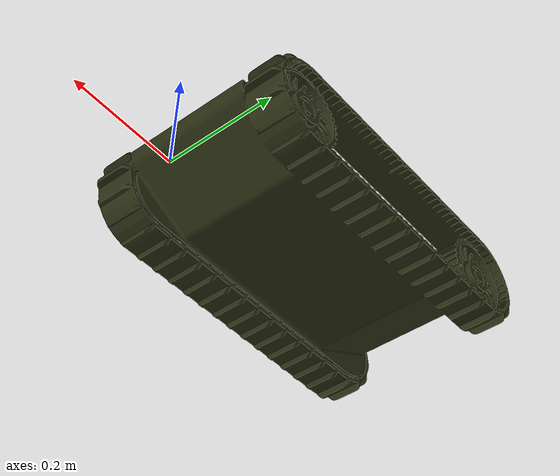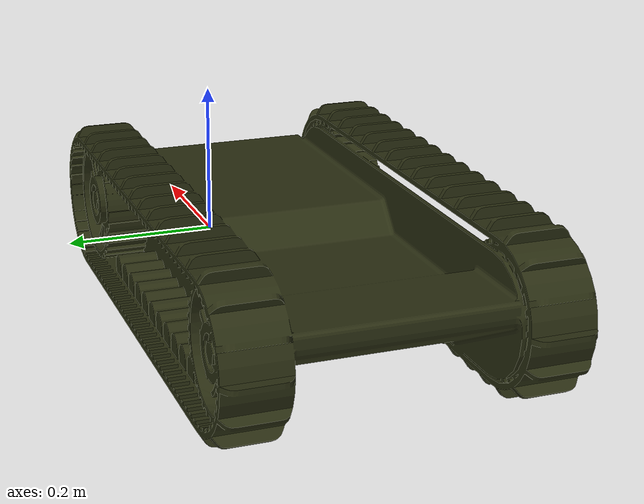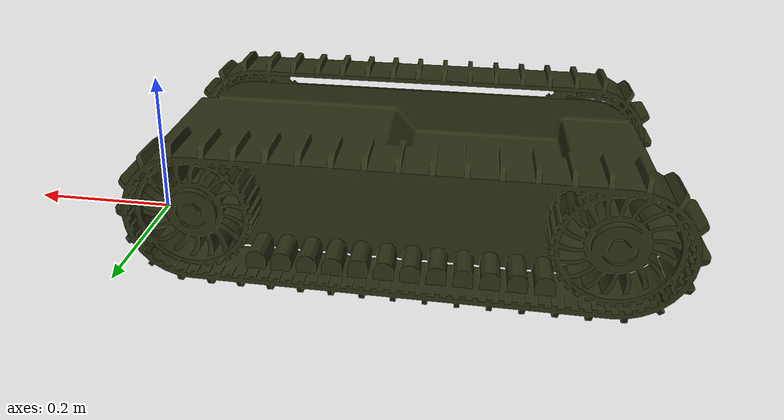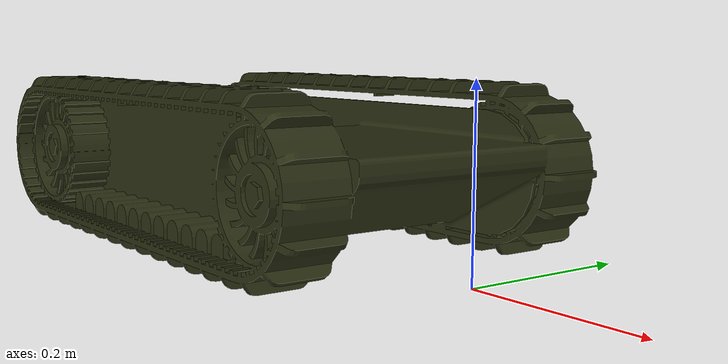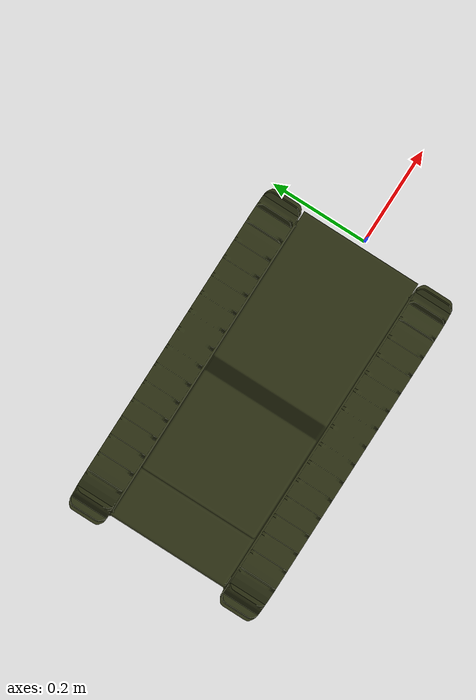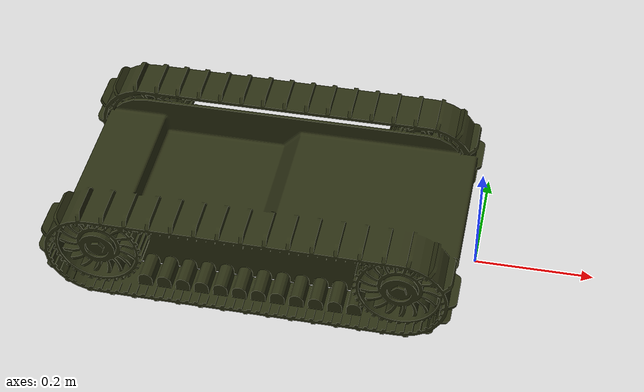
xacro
<?xml version="1.0"?>

<robot name="gvrbot" xmlns:xacro="http://www.ros.org/wiki/xacro">

    <!-- Included URDF Files -->
    <xacro:include filename="$(find gvrbot)/models/robots/gvrbot_base.urdf.xacro" />
    <xacro:gvr_base_macro />
</robot>

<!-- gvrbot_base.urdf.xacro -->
<robot name="gvr_base"
    xmlns:xacro="http://www.ros.org/wiki/xacro"
    xmlns:interface="http://www.ros.org/wiki/xacro/#interface">

    <xacro:include filename="$(find gvrbot)/models/robots/inertial_tensors.urdf.xacro" />
    <xacro:include filename="$(find gvrbot)/models/robots/single_wheel.urdf.xacro" />

    <!-- Properties (Constants) -->
    <xacro:property name="PI" value="3.1415926535897931" />

    <xacro:property name="base_size_x" value="0.680" />
    <xacro:property name="base_size_y" value="0.42" />
    <xacro:property name="base_size_z" value="0.178" />
    <xacro:property name="base_mass" value="10.89" />

    <xacro:property name="wheel_radius_big" value="0.085" />
    <xacro:property name="wheel_size_y" value="0.0825" />
    <xacro:property name="wheel_mass" value="0.1" />

    <xacro:property name="wheel_offset_z_from_base_link" value="-${wheel_radius_big}" />

    <material name="army_green"><color rgba="${42/255} ${46/255} ${18/255} 1.0"/></material>

    <xacro:macro name="gvr_base_macro">

        <link name="base_link"></link>
        <joint name="base_link_joint" type="fixed">
            <origin xyz="0 0 0" rpy="0 0 0" />
            <parent link="base_link"/>
            <child link="chassis_link" />
        </joint>

        <link name="imu_link"/>
        <joint name="imu_to_bl" type="fixed">
          <origin xyz="0.0 0.0 0.0" rpy="0.0 0.0 0.0" />
          <parent link="base_link"/>
          <child link="imu_link"/>
        </joint>

        <link name="chassis_link">
            <inertial>
                <mass value="${base_mass}" />
                <origin xyz="${-base_size_x/2} 0 ${base_size_z/2 + 0.05}" rpy="0 0 0" />
                <xacro:box_inertia x="${base_size_x}" y="${base_size_y}" z="${base_size_z}" mass="${base_mass}" />
            </inertial>
            <!-- compare the two visual pieces until they match up in size then delete the mesh -->
            <visual>
                <origin xyz="0 0 0" rpy="0 0 ${PI/2}" />
                <geometry>
                    <mesh filename="package://gvrbot/models/meshes/gvrbot_base.STL"/>
                </geometry>
                <material name="army_green"/>
            </visual>

            <collision>
                <origin xyz="0 0 0" rpy="0 0 ${PI/2}" />
                <geometry>
                    <mesh filename="package://gvrbot/models/meshes/gvrbot_base.STL"/>
                </geometry>
            </collision>
        </link>

        <xacro:property name="wheelbase" value="0.50" />
        <xacro:property name="track" value="0.33" />
        <xacro:property name="wheel_vertical_offset" value="-0.09" />
        <xacro:property name="wheel_radius" value="0.15" />
        <xacro:property name="wheel_width" value="0.040" />
    </xacro:macro>
</robot>
